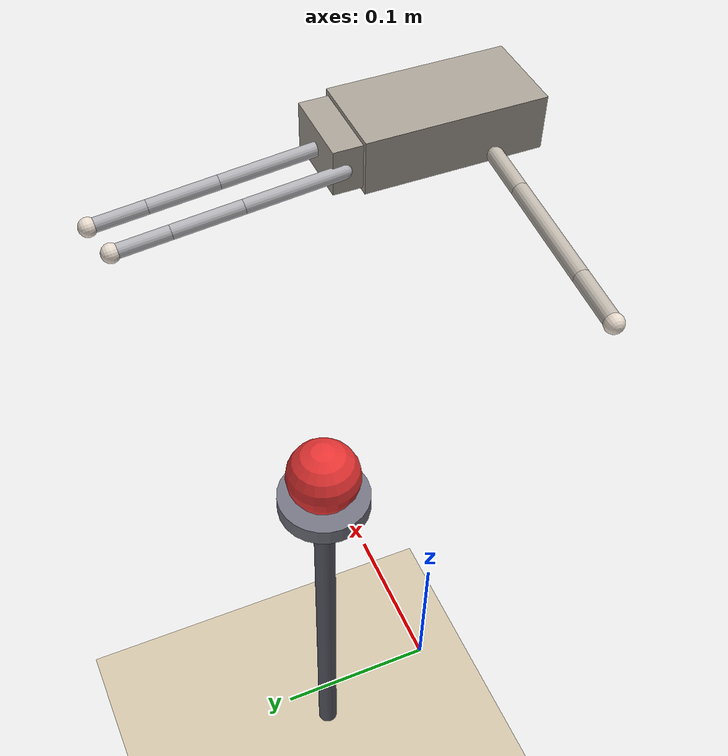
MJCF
<mujoco model="jodell_jack_hand_3f">

  <!-- ==================== 编译选项 ==================== -->
  <compiler angle="radian" eulerseq="xyz"/>

  <option timestep="0.002" gravity="0 0 -9.81" integrator="implicit"/>

  <!-- ==================== 默认参数 ==================== -->
  <default>
    <joint damping="0.01" armature="0.001"/>
    <geom rgba="0.8 0.75 0.65 1" friction="1.0 0.005 0.001"/>

    <default class="finger_link">
      <geom type="capsule" rgba="0.7 0.7 0.72 1" size="0.003"/>
    </default>

    <default class="thumb_link">
      <geom type="capsule" rgba="0.75 0.72 0.68 1" size="0.0035"/>
    </default>

    <default class="finger_joint">
      <joint damping="0.005" armature="0.0005" limited="true"/>
    </default>

    <default class="thumb_joint">
      <joint damping="0.008" armature="0.0008" limited="true"/>
    </default>

    <default class="fingertip">
      <geom type="sphere" size="0.004" rgba="0.9 0.85 0.8 1"
            friction="2.0 0.01 0.005" condim="4"/>
    </default>
  </default>

  <!-- ==================== 资产 ==================== -->
  <asset>
    <texture name="grid" type="2d" builtin="checker" width="512" height="512"
             rgb1="0.3 0.3 0.35" rgb2="0.35 0.35 0.4"/>
    <material name="grid_mat" texture="grid" texrepeat="8 8"/>
    <material name="palm_mat" rgba="0.65 0.62 0.58 1"/>
  </asset>

  <!-- ==================== 世界体 ==================== -->
  <worldbody>
    <geom name="floor" type="plane" size="0.5 0.5 0.01"
          material="grid_mat" pos="0 0 -0.1"/>

    <light pos="0.3 0.3 0.5" dir="-0.3 -0.3 -0.5" diffuse="0.8 0.8 0.8"/>
    <light pos="-0.3 0.3 0.5" dir="0.3 -0.3 -0.5" diffuse="0.4 0.4 0.4"/>

    <!-- ==================== 手腕 6-DOF ==================== -->
    <body name="wrist_base" pos="0 0 0.45">
      <inertial pos="0 0 0" mass="0.05"
                diaginertia="0.00001 0.00001 0.00001"/>
      <joint name="wrist_x" type="slide" axis="1 0 0" range="-0.15 0.15"
             damping="2" limited="true"/>
      <joint name="wrist_y" type="slide" axis="0 1 0" range="-0.15 0.15"
             damping="2" limited="true"/>
      <joint name="wrist_z" type="slide" axis="0 0 1" range="-0.15 0.15"
             damping="2" limited="true"/>
      <joint name="wrist_rx" type="hinge" axis="1 0 0" range="-1.5708 1.5708"
             damping="0.5" limited="true"/>
      <joint name="wrist_ry" type="hinge" axis="0 1 0" range="-1.5708 1.5708"
             damping="0.5" limited="true"/>
      <joint name="wrist_rz" type="hinge" axis="0 0 1" range="-1.5708 1.5708"
             damping="0.5" limited="true"/>

    <!-- ==================== 手掌基座 (三指窄版, 绕X轴-90°掌心朝下) ==================== -->
    <body name="palm" pos="0 0 0" euler="-1.5708 0 0">
      <inertial pos="0 0 0" mass="0.10"
                diaginertia="0.00003 0.00005 0.00002"/>
      <!-- 手掌几何体 (缩窄) -->
      <geom name="palm_body" type="box" size="0.02 0.012 0.04"
            pos="0 0 0.02" rgba="0.65 0.62 0.58 1"/>
      <geom name="palm_top" type="box" size="0.018 0.010 0.008"
            pos="0 0 0.065" rgba="0.65 0.62 0.58 1"/>

      <!-- 掌心相机：掌心朝下，相机朝 -Y_local (= -Z_world 向下) -->
      <camera name="palm_cam" pos="0 0.015 0.04" euler="0 0 0"
              fovy="60"/>

      <!--                    拇指 (Thumb) - 4 DOF                      -->
      <body name="thumb_base" pos="-0.026 0.005 0.005"
            euler="0 -1.5708 0">
        <inertial pos="0 0 0" mass="0.002"
                  diaginertia="0.0000001 0.0000001 0.0000001"/>
        <joint name="thumb_q1" class="thumb_joint" type="hinge"
               axis="1 0 0" range="-1.6580 0" ref="0"/>

        <body name="thumb_q2_frame" pos="0 0 0" euler="0 0 3.14159265">
          <inertial pos="0 0 0" mass="0.002"
                    diaginertia="0.0000001 0.0000001 0.0000001"/>
          <joint name="thumb_q2" class="thumb_joint" type="hinge"
                 axis="0 0 1" range="-0.9599 0" ref="0"/>

          <body name="thumb_link_OM" pos="0 0 0" euler="0 -0.0637 0">
            <inertial pos="0 0 0.01178" mass="0.008"
                      diaginertia="0.000001 0.000001 0.0000002"/>
            <geom name="thumb_OM" class="thumb_link"
                  fromto="0 0 0  0 0 0.02356"/>

            <body name="thumb_link_MN" pos="0 0 0.02356">
              <joint name="thumb_q3" class="thumb_joint" type="hinge"
                     axis="0 1 0" range="-1.5010 0" ref="-0.1434"/>
              <inertial pos="0 0 0.02658" mass="0.012"
                        diaginertia="0.000003 0.000003 0.0000003"/>
              <geom name="thumb_MN" class="thumb_link"
                    fromto="0 0 0  0 0 0.05317"/>

              <body name="thumb_link_NT" pos="0 0 0.05317">
                <joint name="thumb_q4" class="thumb_joint" type="hinge"
                       axis="0 1 0" range="-1.2217 0" ref="0.2919"/>
                <inertial pos="0 0 0.01278" mass="0.006"
                          diaginertia="0.0000008 0.0000008 0.0000001"/>
                <geom name="thumb_NT" class="thumb_link"
                      fromto="0 0 0  0 0 0.02557"/>

                <body name="thumb_tip" pos="0 0 0.02557">
                  <geom name="thumb_tip_geom" class="fingertip"/>
                  <site name="thumb_tip_site" pos="0 0 0" size="0.002"/>
                </body>
              </body>
            </body>
          </body>
        </body>
      </body>

      <!--              食指 (Index) - 等效 3 DOF + 耦合                  -->
      <body name="index_base" pos="-0.018 0 0.068" euler="-0.0944 0 0">
        <inertial pos="0 0 0" mass="0.002"
                  diaginertia="0.0000001 0.0000001 0.0000001"/>
        <joint name="index_q1" class="finger_joint" type="hinge"
               axis="1 0 0" range="-1.5708 0.2618" ref="0"/>

        <body name="index_q2_frame" pos="0 0 0">
          <inertial pos="0 0 0" mass="0.002"
                    diaginertia="0.0000001 0.0000001 0.0000001"/>
          <joint name="index_q2" class="finger_joint" type="hinge"
                 axis="0 1 0" range="-0.35 0.35" ref="0"/>

          <body name="index_link_PM" pos="0 0 0">
            <inertial pos="0 0 0.02119" mass="0.010"
                      diaginertia="0.000002 0.000002 0.0000003"/>
            <geom name="index_PM" class="finger_link"
                  fromto="0 0 0  0 0 0.04239"/>

            <body name="index_link_MN" pos="0 0 0.04239">
              <joint name="index_q3" class="finger_joint" type="hinge"
                     axis="1 0 0" range="-1.5708 0.2618" ref="0"/>
              <inertial pos="0 0 0.015" mass="0.006"
                        diaginertia="0.0000008 0.0000008 0.0000001"/>
              <geom name="index_MN" class="finger_link"
                    fromto="0 0 0  0 0 0.03"/>

              <body name="index_link_NT" pos="0 0 0.03">
                <joint name="index_q4" class="finger_joint" type="hinge"
                       axis="1 0 0" range="-1.5708 0.2618" ref="0"/>
                <inertial pos="0 0 0.01208" mass="0.004"
                          diaginertia="0.0000004 0.0000004 0.00000005"/>
                <geom name="index_NT" class="finger_link"
                      fromto="0 0 0  0 0 0.02416"/>

                <body name="index_tip" pos="0 0 0.02416">
                  <geom name="index_tip_geom" class="fingertip"/>
                  <site name="index_tip_site" pos="0 0 0" size="0.002"/>
                </body>
              </body>
            </body>
          </body>
        </body>
      </body>

      <!--                      中指 (Middle)                            -->
      <body name="middle_base" pos="0.000 0 0.072" euler="-0.0944 0 0">
        <inertial pos="0 0 0" mass="0.002"
                  diaginertia="0.0000001 0.0000001 0.0000001"/>
        <joint name="middle_q1" class="finger_joint" type="hinge"
               axis="1 0 0" range="-1.5708 0.2618" ref="0"/>
        <body name="middle_q2_frame" pos="0 0 0">
          <inertial pos="0 0 0" mass="0.002"
                    diaginertia="0.0000001 0.0000001 0.0000001"/>
          <joint name="middle_q2" class="finger_joint" type="hinge"
                 axis="0 1 0" range="-0.35 0.35" ref="0"/>
          <body name="middle_link_PM" pos="0 0 0">
            <inertial pos="0 0 0.02119" mass="0.010"
                      diaginertia="0.000002 0.000002 0.0000003"/>
            <geom name="middle_PM" class="finger_link"
                  fromto="0 0 0  0 0 0.04239"/>
            <body name="middle_link_MN" pos="0 0 0.04239">
              <joint name="middle_q3" class="finger_joint" type="hinge"
                     axis="1 0 0" range="-1.5708 0.2618" ref="0"/>
              <inertial pos="0 0 0.015" mass="0.006"
                        diaginertia="0.0000008 0.0000008 0.0000001"/>
              <geom name="middle_MN" class="finger_link"
                    fromto="0 0 0  0 0 0.03"/>
              <body name="middle_link_NT" pos="0 0 0.03">
                <joint name="middle_q4" class="finger_joint" type="hinge"
                       axis="1 0 0" range="-1.5708 0.2618" ref="0"/>
                <inertial pos="0 0 0.01208" mass="0.004"
                          diaginertia="0.0000004 0.0000004 0.00000005"/>
                <geom name="middle_NT" class="finger_link"
                      fromto="0 0 0  0 0 0.02416"/>
                <body name="middle_tip" pos="0 0 0.02416">
                  <geom name="middle_tip_geom" class="fingertip"/>
                  <site name="middle_tip_site" pos="0 0 0" size="0.002"/>
                </body>
              </body>
            </body>
          </body>
        </body>
      </body>

    </body><!-- end palm -->
    </body><!-- end wrist_base -->

    <!-- ==================== 物体放置台 (紧凑圆台,不阻挡抓取路径) ==================== -->
    <geom name="table_top" type="cylinder" size="0.025 0.005"
          pos="-0.02 0.08 0.245" rgba="0.45 0.45 0.5 1"
          friction="1.0 0.005 0.001"/>
    <geom name="table_leg" type="cylinder" size="0.006 0.12"
          pos="-0.02 0.08 0.12" rgba="0.35 0.35 0.4 1"/>

    <!-- ==================== 抓取目标物体 ==================== -->
    <body name="target_object" pos="-0.02 0.08 0.265">
      <freejoint name="obj_free"/>
      <inertial pos="0 0 0" mass="0.05"
                diaginertia="0.000005 0.000005 0.000005"/>
      <geom name="obj_geom" type="sphere" size="0.02" mass="0.05"
            rgba="0.9 0.2 0.2 1" friction="1.0 0.005 0.001"
            condim="4"/>
    </body>

  </worldbody>

  <!-- ==================== 等式约束 ==================== -->
  <equality>
    <joint name="index_q3q4_coupling" joint1="index_q4" joint2="index_q3"
           polycoef="-0.01462 1.27107 0.07658 0.05314 0.10674"/>

    <joint name="middle_q3q4_coupling" joint1="middle_q4" joint2="middle_q3"
           polycoef="-0.01462 1.27107 0.07658 0.05314 0.10674"/>
  </equality>

  <!-- ==================== 驱动器 ==================== -->
  <actuator>
    <!-- 手腕驱动 (6-DOF) -->
    <position name="wrist_act_x" joint="wrist_x" kp="2000" ctrlrange="-0.15 0.15"/>
    <position name="wrist_act_y" joint="wrist_y" kp="2000" ctrlrange="-0.15 0.15"/>
    <position name="wrist_act_z" joint="wrist_z" kp="2000" ctrlrange="-0.15 0.15"/>
    <position name="wrist_act_rx" joint="wrist_rx" kp="200" ctrlrange="-1.5708 1.5708"/>
    <position name="wrist_act_ry" joint="wrist_ry" kp="200" ctrlrange="-1.5708 1.5708"/>
    <position name="wrist_act_rz" joint="wrist_rz" kp="200" ctrlrange="-1.5708 1.5708"/>

    <!-- 拇指驱动 -->
    <position name="thumb_act_q1" joint="thumb_q1" kp="5.0" ctrlrange="-1.658 0"/>
    <position name="thumb_act_q2" joint="thumb_q2" kp="5.0" ctrlrange="-0.960 0"/>
    <position name="thumb_act_q3" joint="thumb_q3" kp="4.0" ctrlrange="-1.501 0"/>
    <position name="thumb_act_q4" joint="thumb_q4" kp="3.0" ctrlrange="-1.222 0"/>

    <!-- 食指驱动 -->
    <position name="index_act_q1" joint="index_q1" kp="5.0" ctrlrange="-1.571 0.262"/>
    <position name="index_act_q2" joint="index_q2" kp="4.0" ctrlrange="-0.35 0.35"/>
    <position name="index_act_q3" joint="index_q3" kp="4.0" ctrlrange="-1.571 0.262"/>

    <!-- 中指驱动 -->
    <position name="middle_act_q1" joint="middle_q1" kp="5.0" ctrlrange="-1.571 0.262"/>
    <position name="middle_act_q2" joint="middle_q2" kp="4.0" ctrlrange="-0.35 0.35"/>
    <position name="middle_act_q3" joint="middle_q3" kp="4.0" ctrlrange="-1.571 0.262"/>
  </actuator>

  <!-- ==================== 传感器 ==================== -->
  <sensor>
    <!-- 指尖位置 -->
    <framepos name="thumb_tip_pos" objtype="site" objname="thumb_tip_site"/>
    <framepos name="index_tip_pos" objtype="site" objname="index_tip_site"/>
    <framepos name="middle_tip_pos" objtype="site" objname="middle_tip_site"/>

    <!-- 指尖触觉 (法向力标量) -->
    <touch name="thumb_touch" site="thumb_tip_site"/>
    <touch name="index_touch" site="index_tip_site"/>
    <touch name="middle_touch" site="middle_tip_site"/>

    <!-- 手腕关节 -->
    <jointpos name="wrist_x_pos" joint="wrist_x"/>
    <jointpos name="wrist_y_pos" joint="wrist_y"/>
    <jointpos name="wrist_z_pos" joint="wrist_z"/>
    <jointpos name="wrist_rx_pos" joint="wrist_rx"/>
    <jointpos name="wrist_ry_pos" joint="wrist_ry"/>
    <jointpos name="wrist_rz_pos" joint="wrist_rz"/>

    <!-- 手指关节 -->
    <jointpos name="thumb_q1_pos" joint="thumb_q1"/>
    <jointpos name="thumb_q2_pos" joint="thumb_q2"/>
    <jointpos name="thumb_q3_pos" joint="thumb_q3"/>
    <jointpos name="thumb_q4_pos" joint="thumb_q4"/>
    <jointpos name="index_q1_pos" joint="index_q1"/>
    <jointpos name="index_q2_pos" joint="index_q2"/>
    <jointpos name="index_q3_pos" joint="index_q3"/>
    <jointpos name="index_q4_pos" joint="index_q4"/>
    <jointpos name="middle_q1_pos" joint="middle_q1"/>
    <jointpos name="middle_q2_pos" joint="middle_q2"/>
    <jointpos name="middle_q3_pos" joint="middle_q3"/>
    <jointpos name="middle_q4_pos" joint="middle_q4"/>
  </sensor>

</mujoco>
